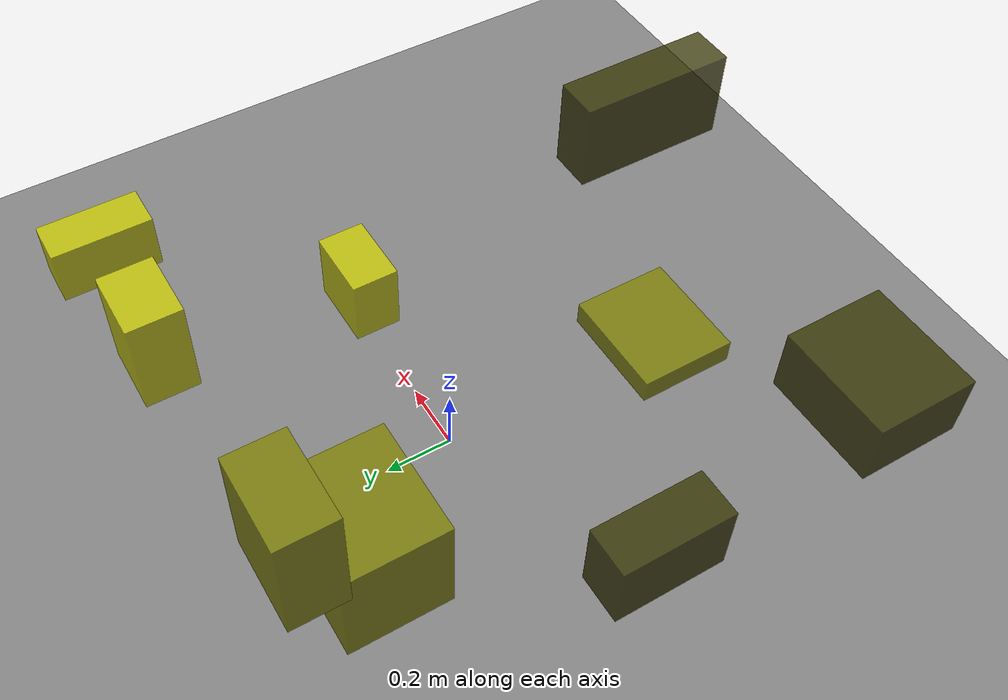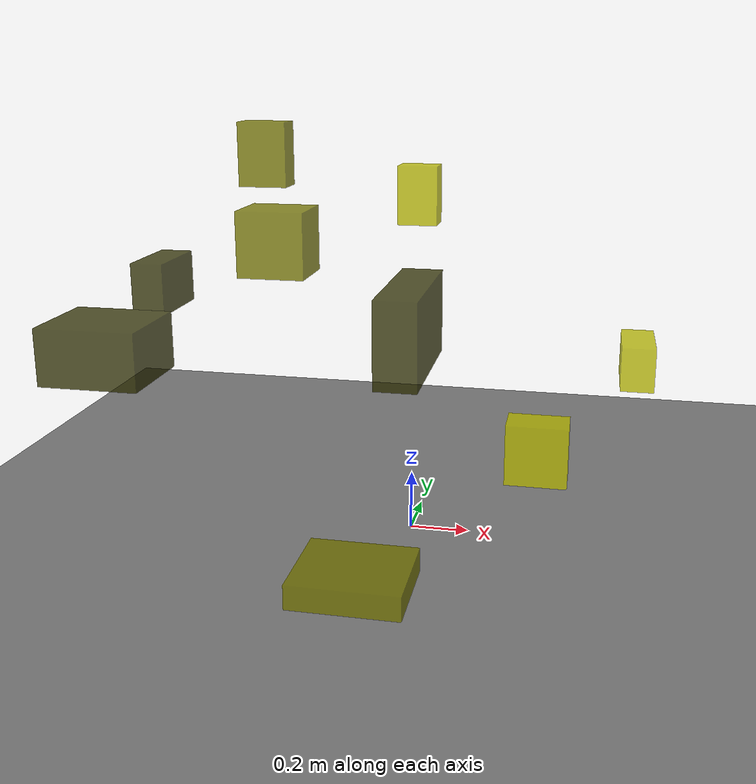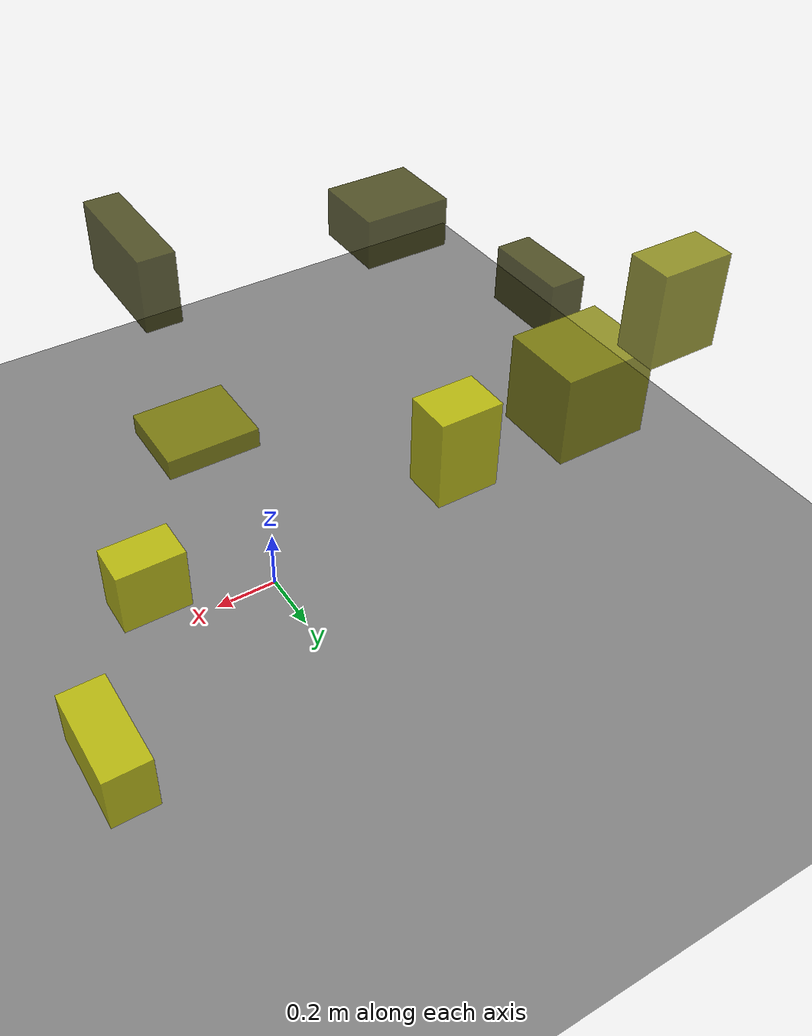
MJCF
<?xml version="1.0"?>
<mujoco model="obstacle_scene">
  <compiler angle="radian" coordinate="local"/>
  <option timestep="0.001" gravity="0 0 -9.81"/>

  <asset>
    <material name="obstacle_mat" rgba="0.8 0.8 0.0 0.8"/>
    <material name="ground_mat" rgba="0.5 0.5 0.5 1"/>
  </asset>

  <worldbody>
    <!-- Ground plane -->
    <geom name="ground" type="plane" size="3 3 0.1" material="ground_mat"/>

    <!-- Obstacles -->
    <body name="obstacle_0" pos="-0.792472 -0.608228 0.779484">
      <geom name="obs_0" type="box" size="0.149608 0.130487 0.085694" rgba="0.2 0.2 0.0 0.8"/>
    </body>
    <body name="obstacle_1" pos="-0.640898 0.559023 0.895952">
      <geom name="obs_1" type="box" size="0.134053 0.116832 0.130783" rgba="0.5 0.5 0.0 0.8"/>
    </body>
    <body name="obstacle_2" pos="-0.108319 0.751850 1.069769">
      <geom name="obs_2" type="box" size="0.078614 0.059267 0.116377" rgba="0.8 0.8 0.0 0.8"/>
    </body>
    <body name="obstacle_3" pos="0.104539 -0.617143 0.890966">
      <geom name="obs_3" type="box" size="0.058075 0.204528 0.119462" rgba="0.2 0.2 0.0 0.8"/>
    </body>
    <body name="obstacle_4" pos="-0.050517 -0.649591 0.143144">
      <geom name="obs_4" type="box" size="0.168262 0.145781 0.037915" rgba="0.5 0.5 0.0 0.8"/>
    </body>
    <body name="obstacle_5" pos="0.426278 0.047937 0.296869">
      <geom name="obs_5" type="box" size="0.105606 0.067453 0.106123" rgba="0.8 0.8 0.0 0.8"/>
    </body>
    <body name="obstacle_6" pos="-0.907029 0.057724 0.827571">
      <geom name="obs_6" type="box" size="0.056572 0.132618 0.090217" rgba="0.2 0.2 0.0 0.8"/>
    </body>
    <body name="obstacle_7" pos="-0.738793 0.737153 1.220388">
      <geom name="obs_7" type="box" size="0.098450 0.059914 0.128973" rgba="0.5 0.5 0.0 0.8"/>
    </body>
    <body name="obstacle_8" pos="0.768809 0.658746 0.458454">
      <geom name="obs_8" type="box" size="0.062635 0.141683 0.084920" rgba="0.8 0.8 0.0 0.8"/>
    </body>
  </worldbody>
</mujoco>
